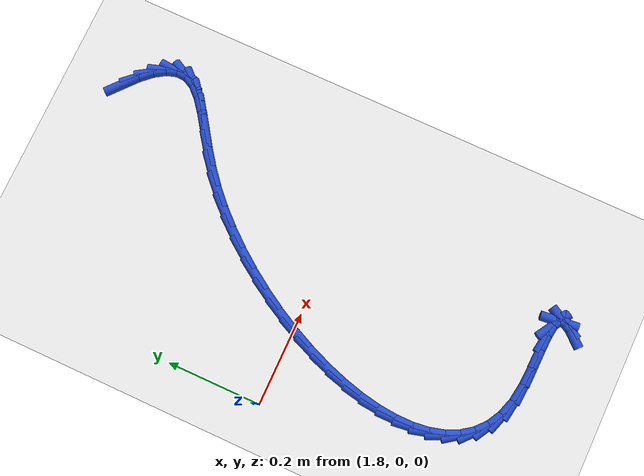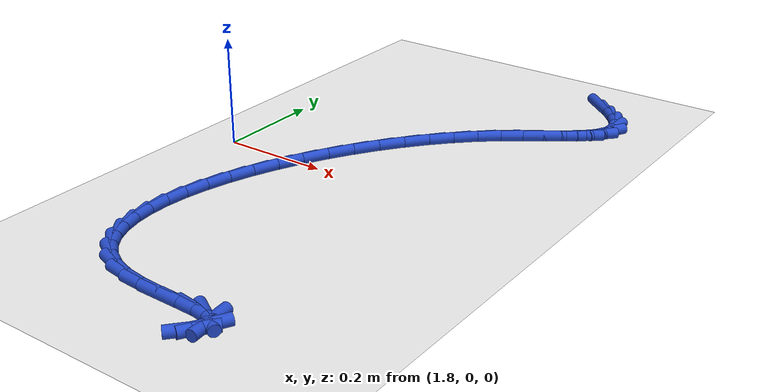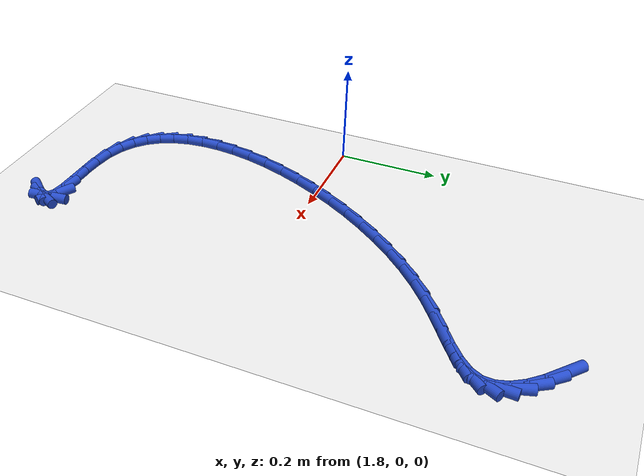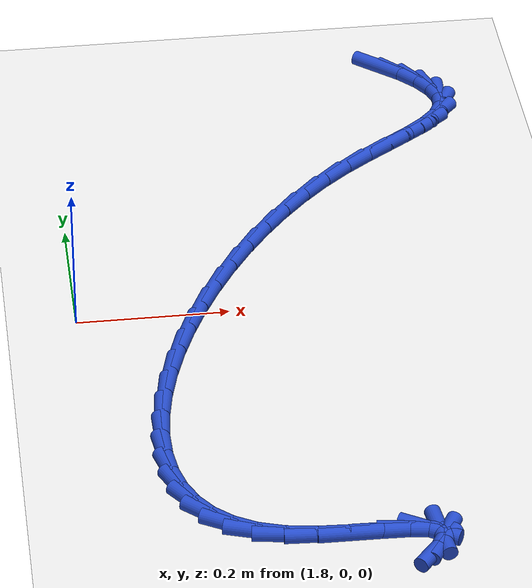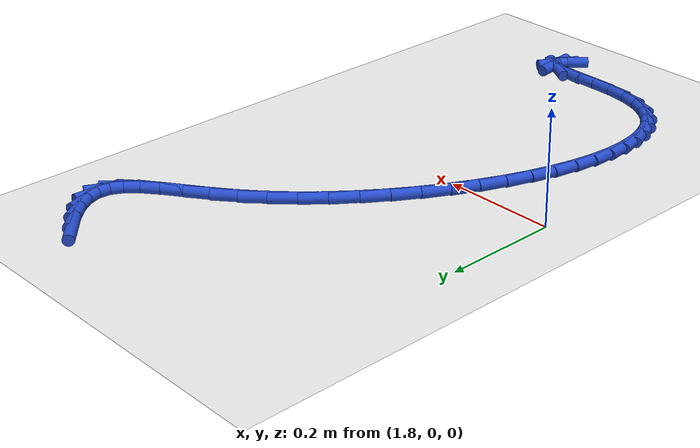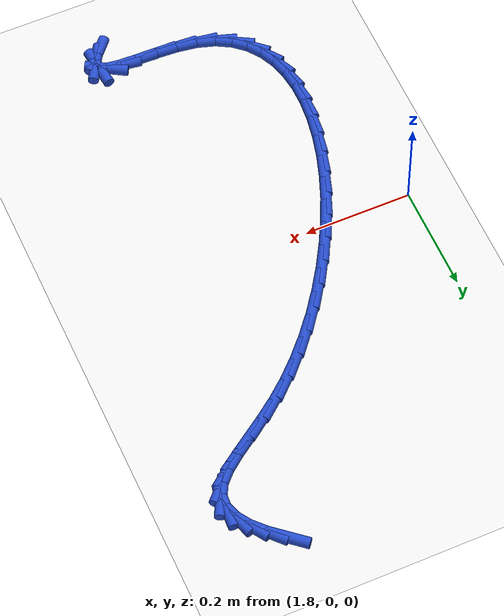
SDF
<sdf version="1.6">
 <world name="default">
  <model name="ground_plane">
   <static>1</static>
   <link name="link">
    <collision name="collision">
     <geometry><plane><normal>0 0 1</normal><size>100 100</size></plane></geometry>
     <surface><friction><ode><mu>100</mu><mu2>50</mu2></ode></friction></surface>
    </collision>
    <visual name="visual">
     <cast_shadows>0</cast_shadows>
     <geometry><plane><normal>0 0 1</normal><size>100 100</size></plane></geometry>
     <material>
      <script><uri>file://media/materials/scripts/gazebo.material</uri><name>Gazebo/WhiteGlow</name></script>
     </material>
    </visual>
   </link>
  </model>
  <model name="line">
   <link name="link_109">
    <pose>2.2791707379056088 0.5406483550702029 0.01 0 1.57 -0.7071521946297022</pose>
    <collision name="collision">
     <geometry><cylinder><radius>0.01</radius><length>0.08</length></cylinder></geometry>
    </collision>
    <visual name="visual">
     <material>
      <script><name>Gazebo/Blue</name><uri>file://media/materials/scripts/gazebo.material</uri></script>
     </material>
     <geometry><cylinder><radius>0.01</radius><length>0.08</length></cylinder></geometry>
    </visual>
   </link>
   <link name="link_110">
    <pose>2.3066873894392237 0.5171329271090309 0.01 0 1.57 -0.8260223634685088</pose>
    <collision name="collision">
     <geometry><cylinder><radius>0.01</radius><length>0.08</length></cylinder></geometry>
    </collision>
    <visual name="visual">
     <material>
      <script><name>Gazebo/Blue</name><uri>file://media/materials/scripts/gazebo.material</uri></script>
     </material>
     <geometry><cylinder><radius>0.01</radius><length>0.08</length></cylinder></geometry>
    </visual>
   </link>
   <link name="link_111">
    <pose>2.328373750245329 0.4936089202662467 0.01 0 1.57 -1.000448981818835</pose>
    <collision name="collision">
     <geometry><cylinder><radius>0.01</radius><length>0.08</length></cylinder></geometry>
    </collision>
    <visual name="visual">
     <material>
      <script><name>Gazebo/Blue</name><uri>file://media/materials/scripts/gazebo.material</uri></script>
     </material>
     <geometry><cylinder><radius>0.01</radius><length>0.08</length></cylinder></geometry>
    </visual>
   </link>
   <link name="link_112">
    <pose>2.343291833887722 0.47035242156020535 0.01 0 1.57 -1.2633438800542103</pose>
    <collision name="collision">
     <geometry><cylinder><radius>0.01</radius><length>0.08</length></cylinder></geometry>
    </collision>
    <visual name="visual">
     <material>
      <script><name>Gazebo/Blue</name><uri>file://media/materials/scripts/gazebo.material</uri></script>
     </material>
     <geometry><cylinder><radius>0.01</radius><length>0.08</length></cylinder></geometry>
    </visual>
   </link>
   <link name="link_113">
    <pose>2.3505036539301987 0.44763951800926133 0.01 0 1.57 1.5054614357379417</pose>
    <collision name="collision">
     <geometry><cylinder><radius>0.01</radius><length>0.08</length></cylinder></geometry>
    </collision>
    <visual name="visual">
     <material>
      <script><name>Gazebo/Blue</name><uri>file://media/materials/scripts/gazebo.material</uri></script>
     </material>
     <geometry><cylinder><radius>0.01</radius><length>0.08</length></cylinder></geometry>
    </visual>
   </link>
   <link name="link_114">
    <pose>2.3490712239365563 0.42574629663177005 0.01 0 1.57 1.0929296908083665</pose>
    <collision name="collision">
     <geometry><cylinder><radius>0.01</radius><length>0.08</length></cylinder></geometry>
    </collision>
    <visual name="visual">
     <material>
      <script><name>Gazebo/Blue</name><uri>file://media/materials/scripts/gazebo.material</uri></script>
     </material>
     <geometry><cylinder><radius>0.01</radius><length>0.08</length></cylinder></geometry>
    </visual>
   </link>
   <link name="link_115">
    <pose>2.338259573347354 0.40487044555839247 0.01 0 1.57 0.8124771727961446</pose>
    <collision name="collision">
     <geometry><cylinder><radius>0.01</radius><length>0.08</length></cylinder></geometry>
    </collision>
    <visual name="visual">
     <material>
      <script><name>Gazebo/Blue</name><uri>file://media/materials/scripts/gazebo.material</uri></script>
     </material>
     <geometry><cylinder><radius>0.01</radius><length>0.08</length></cylinder></geometry>
    </visual>
   </link>
   <link name="link_116">
    <pose>2.3190191952962818 0.38455877535841093 0.01 0 1.57 0.670381623799917</pose>
    <collision name="collision">
     <geometry><cylinder><radius>0.01</radius><length>0.08</length></cylinder></geometry>
    </collision>
    <visual name="visual">
     <material>
      <script><name>Gazebo/Blue</name><uri>file://media/materials/scripts/gazebo.material</uri></script>
     </material>
     <geometry><cylinder><radius>0.01</radius><length>0.08</length></cylinder></geometry>
    </visual>
   </link>
   <link name="link_117">
    <pose>2.2931350323674717 0.36403585624338686 0.01 0 1.57 0.6106379080606386</pose>
    <collision name="collision">
     <geometry><cylinder><radius>0.01</radius><length>0.08</length></cylinder></geometry>
    </collision>
    <visual name="visual">
     <material>
      <script><name>Gazebo/Blue</name><uri>file://media/materials/scripts/gazebo.material</uri></script>
     </material>
     <geometry><cylinder><radius>0.01</radius><length>0.08</length></cylinder></geometry>
    </visual>
   </link>
   <link name="link_118">
    <pose>2.2623979868542614 0.34252395695673926 0.01 0 1.57 0.6031262595604006</pose>
    <collision name="collision">
     <geometry><cylinder><radius>0.01</radius><length>0.08</length></cylinder></geometry>
    </collision>
    <visual name="visual">
     <material>
      <script><name>Gazebo/Blue</name><uri>file://media/materials/scripts/gazebo.material</uri></script>
     </material>
     <geometry><cylinder><radius>0.01</radius><length>0.08</length></cylinder></geometry>
    </visual>
   </link>
   <link name="link_119">
    <pose>2.2285989610499897 0.31924534624188744 0.01 0 1.57 0.6346926039071227</pose>
    <collision name="collision">
     <geometry><cylinder><radius>0.01</radius><length>0.08</length></cylinder></geometry>
    </collision>
    <visual name="visual">
     <material>
      <script><name>Gazebo/Blue</name><uri>file://media/materials/scripts/gazebo.material</uri></script>
     </material>
     <geometry><cylinder><radius>0.01</radius><length>0.08</length></cylinder></geometry>
    </visual>
   </link>
   <link name="link_120">
    <pose>2.193528857247996 0.29342229284225113 0.01 0 1.57 0.6976509144621438</pose>
    <collision name="collision">
     <geometry><cylinder><radius>0.01</radius><length>0.08</length></cylinder></geometry>
    </collision>
    <visual name="visual">
     <material>
      <script><name>Gazebo/Blue</name><uri>file://media/materials/scripts/gazebo.material</uri></script>
     </material>
     <geometry><cylinder><radius>0.01</radius><length>0.08</length></cylinder></geometry>
    </visual>
   </link>
   <link name="link_121">
    <pose>2.158863797555404 0.26436324375217307 0.01 0 1.57 0.7656723222307833</pose>
    <collision name="collision">
     <geometry><cylinder><radius>0.01</radius><length>0.08</length></cylinder></geometry>
    </collision>
    <visual name="visual">
     <material>
      <script><name>Gazebo/Blue</name><uri>file://media/materials/scripts/gazebo.material</uri></script>
     </material>
     <geometry><cylinder><radius>0.01</radius><length>0.08</length></cylinder></geometry>
    </visual>
   </link>
   <link name="link_122">
    <pose>2.1253083078036052 0.23210613134504904 0.01 0 1.57 0.827286434055667</pose>
    <collision name="collision">
     <geometry><cylinder><radius>0.01</radius><length>0.08</length></cylinder></geometry>
    </collision>
    <visual name="visual">
     <material>
      <script><name>Gazebo/Blue</name><uri>file://media/materials/scripts/gazebo.material</uri></script>
     </material>
     <geometry><cylinder><radius>0.01</radius><length>0.08</length></cylinder></geometry>
    </visual>
   </link>
   <link name="link_123">
    <pose>2.093078033174193 0.19705594506832125 0.01 0 1.57 0.8840420822901037</pose>
    <collision name="collision">
     <geometry><cylinder><radius>0.01</radius><length>0.08</length></cylinder></geometry>
    </collision>
    <visual name="visual">
     <material>
      <script><name>Gazebo/Blue</name><uri>file://media/materials/scripts/gazebo.material</uri></script>
     </material>
     <geometry><cylinder><radius>0.01</radius><length>0.08</length></cylinder></geometry>
    </visual>
   </link>
   <link name="link_124">
    <pose>2.062384906300619 0.15962046179221145 0.01 0 1.57 0.9373684311179421</pose>
    <collision name="collision">
     <geometry><cylinder><radius>0.01</radius><length>0.08</length></cylinder></geometry>
    </collision>
    <visual name="visual">
     <material>
      <script><name>Gazebo/Blue</name><uri>file://media/materials/scripts/gazebo.material</uri></script>
     </material>
     <geometry><cylinder><radius>0.01</radius><length>0.08</length></cylinder></geometry>
    </visual>
   </link>
   <link name="link_125">
    <pose>2.0334408598163316 0.12020745838694152 0.01 0 1.57 0.9885387745053886</pose>
    <collision name="collision">
     <geometry><cylinder><radius>0.01</radius><length>0.08</length></cylinder></geometry>
    </collision>
    <visual name="visual">
     <material>
      <script><name>Gazebo/Blue</name><uri>file://media/materials/scripts/gazebo.material</uri></script>
     </material>
     <geometry><cylinder><radius>0.01</radius><length>0.08</length></cylinder></geometry>
    </visual>
   </link>
   <link name="link_126">
    <pose>2.0064578263547808 0.07922471172273331 0.01 0 1.57 1.0387359799749938</pose>
    <collision name="collision">
     <geometry><cylinder><radius>0.01</radius><length>0.08</length></cylinder></geometry>
    </collision>
    <visual name="visual">
     <material>
      <script><name>Gazebo/Blue</name><uri>file://media/materials/scripts/gazebo.material</uri></script>
     </material>
     <geometry><cylinder><radius>0.01</radius><length>0.08</length></cylinder></geometry>
    </visual>
   </link>
   <link name="link_127">
    <pose>1.9816477385494167 0.037079998669808614 0.01 0 1.57 1.0891183109979177</pose>
    <collision name="collision">
     <geometry><cylinder><radius>0.01</radius><length>0.08</length></cylinder></geometry>
    </collision>
    <visual name="visual">
     <material>
      <script><name>Gazebo/Blue</name><uri>file://media/materials/scripts/gazebo.material</uri></script>
     </material>
     <geometry><cylinder><radius>0.01</radius><length>0.08</length></cylinder></geometry>
    </visual>
   </link>
   <link name="link_128">
    <pose>1.9592225290336884 -0.0058189039016107585 0.01 0 1.57 1.1408882683886215</pose>
    <collision name="collision">
     <geometry><cylinder><radius>0.01</radius><length>0.08</length></cylinder></geometry>
    </collision>
    <visual name="visual">
     <material>
      <script><name>Gazebo/Blue</name><uri>file://media/materials/scripts/gazebo.material</uri></script>
     </material>
     <geometry><cylinder><radius>0.01</radius><length>0.08</length></cylinder></geometry>
    </visual>
   </link>
   <link name="link_129">
    <pose>1.9393941304410454 -0.04906421912130303 0.01 0 1.57 1.1953692449509468</pose>
    <collision name="collision">
     <geometry><cylinder><radius>0.01</radius><length>0.08</length></cylinder></geometry>
    </collision>
    <visual name="visual">
     <material>
      <script><name>Gazebo/Blue</name><uri>file://media/materials/scripts/gazebo.material</uri></script>
     </material>
     <geometry><cylinder><radius>0.01</radius><length>0.08</length></cylinder></geometry>
    </visual>
   </link>
   <link name="link_130">
    <pose>1.9223744754049379 -0.0922481701190464 0.01 0 1.57 1.2540960752663137</pose>
    <collision name="collision">
     <geometry><cylinder><radius>0.01</radius><length>0.08</length></cylinder></geometry>
    </collision>
    <visual name="visual">
     <material>
      <script><name>Gazebo/Blue</name><uri>file://media/materials/scripts/gazebo.material</uri></script>
     </material>
     <geometry><cylinder><radius>0.01</radius><length>0.08</length></cylinder></geometry>
    </visual>
   </link>
   <link name="link_131">
    <pose>1.9083754965588153 -0.13496298002461893 0.01 0 1.57 1.3189257766033793</pose>
    <collision name="collision">
     <geometry><cylinder><radius>0.01</radius><length>0.08</length></cylinder></geometry>
    </collision>
    <visual name="visual">
     <material>
      <script><name>Gazebo/Blue</name><uri>file://media/materials/scripts/gazebo.material</uri></script>
     </material>
     <geometry><cylinder><radius>0.01</radius><length>0.08</length></cylinder></geometry>
    </visual>
   </link>
   <link name="link_132">
    <pose>1.8976091265361268 -0.17680087196779884 0.01 0 1.57 1.392171922472418</pose>
    <collision name="collision">
     <geometry><cylinder><radius>0.01</radius><length>0.08</length></cylinder></geometry>
    </collision>
    <visual name="visual">
     <material>
      <script><name>Gazebo/Blue</name><uri>file://media/materials/scripts/gazebo.material</uri></script>
     </material>
     <geometry><cylinder><radius>0.01</radius><length>0.08</length></cylinder></geometry>
    </visual>
   </link>
   <link name="link_133">
    <pose>1.890287297970323 -0.2173540690783644 0.01 0 1.57 1.4767542648757659</pose>
    <collision name="collision">
     <geometry><cylinder><radius>0.01</radius><length>0.08</length></cylinder></geometry>
    </collision>
    <visual name="visual">
     <material>
      <script><name>Gazebo/Blue</name><uri>file://media/materials/scripts/gazebo.material</uri></script>
     </material>
     <geometry><cylinder><radius>0.01</radius><length>0.08</length></cylinder></geometry>
    </visual>
   </link>
   <link name="link_134">
    <pose>1.8866219434948523 -0.2562147944860937 0.01 0 1.57 -1.5652727264300403</pose>
    <collision name="collision">
     <geometry><cylinder><radius>0.01</radius><length>0.08</length></cylinder></geometry>
    </collision>
    <visual name="visual">
     <material>
      <script><name>Gazebo/Blue</name><uri>file://media/materials/scripts/gazebo.material</uri></script>
     </material>
     <geometry><cylinder><radius>0.01</radius><length>0.08</length></cylinder></geometry>
    </visual>
   </link>
   <link name="link_135">
    <pose>1.886824995743165 -0.29297527132076495 0.01 0 1.57 -1.4463885787642685</pose>
    <collision name="collision">
     <geometry><cylinder><radius>0.01</radius><length>0.08</length></cylinder></geometry>
    </collision>
    <visual name="visual">
     <material>
      <script><name>Gazebo/Blue</name><uri>file://media/materials/scripts/gazebo.material</uri></script>
     </material>
     <geometry><cylinder><radius>0.01</radius><length>0.08</length></cylinder></geometry>
    </visual>
   </link>
   <link name="link_136">
    <pose>1.8911083873487113 -0.32722772271215644 0.01 0 1.57 -1.3036740669974585</pose>
    <collision name="collision">
     <geometry><cylinder><radius>0.01</radius><length>0.08</length></cylinder></geometry>
    </collision>
    <visual name="visual">
     <material>
      <script><name>Gazebo/Blue</name><uri>file://media/materials/scripts/gazebo.material</uri></script>
     </material>
     <geometry><cylinder><radius>0.01</radius><length>0.08</length></cylinder></geometry>
    </visual>
   </link>
   <link name="link_137">
    <pose>1.89968405094494 -0.3585643717900462 0.01 0 1.57 -1.1339609931120458</pose>
    <collision name="collision">
     <geometry><cylinder><radius>0.01</radius><length>0.08</length></cylinder></geometry>
    </collision>
    <visual name="visual">
     <material>
      <script><name>Gazebo/Blue</name><uri>file://media/materials/scripts/gazebo.material</uri></script>
     </material>
     <geometry><cylinder><radius>0.01</radius><length>0.08</length></cylinder></geometry>
    </visual>
   </link>
   <link name="link_138">
    <pose>1.9127639191653008 -0.38657744168421243 0.01 0 1.57 -0.9383310190040286</pose>
    <collision name="collision">
     <geometry><cylinder><radius>0.01</radius><length>0.08</length></cylinder></geometry>
    </collision>
    <visual name="visual">
     <material>
      <script><name>Gazebo/Blue</name><uri>file://media/materials/scripts/gazebo.material</uri></script>
     </material>
     <geometry><cylinder><radius>0.01</radius><length>0.08</length></cylinder></geometry>
    </visual>
   </link>
   <link name="link_139">
    <pose>1.9305599246432439 -0.41085915552443336 0.01 0 1.57 -0.7252493031515379</pose>
    <collision name="collision">
     <geometry><cylinder><radius>0.01</radius><length>0.08</length></cylinder></geometry>
    </collision>
    <visual name="visual">
     <material>
      <script><name>Gazebo/Blue</name><uri>file://media/materials/scripts/gazebo.material</uri></script>
     </material>
     <geometry><cylinder><radius>0.01</radius><length>0.08</length></cylinder></geometry>
    </visual>
   </link>
   <link name="link_140">
    <pose>1.9532840000122178 -0.43100173644048717 0.01 0 1.57 -0.5102639223256162</pose>
    <collision name="collision">
     <geometry><cylinder><radius>0.01</radius><length>0.08</length></cylinder></geometry>
    </collision>
    <visual name="visual">
     <material>
      <script><name>Gazebo/Blue</name><uri>file://media/materials/scripts/gazebo.material</uri></script>
     </material>
     <geometry><cylinder><radius>0.01</radius><length>0.08</length></cylinder></geometry>
    </visual>
   </link>
   <link name="link_141">
    <pose>1.9811480779056736 -0.44659740756215205 0.01 0 1.57 -0.3100268089567567</pose>
    <collision name="collision">
     <geometry><cylinder><radius>0.01</radius><length>0.08</length></cylinder></geometry>
    </collision>
    <visual name="visual">
     <material>
      <script><name>Gazebo/Blue</name><uri>file://media/materials/scripts/gazebo.material</uri></script>
     </material>
     <geometry><cylinder><radius>0.01</radius><length>0.08</length></cylinder></geometry>
    </visual>
   </link>
   <link name="link_142">
    <pose>2.0143640909570593 -0.457238392019206 0.01 0 1.57 -0.14687577225755266</pose>
    <collision name="collision">
     <geometry><cylinder><radius>0.01</radius><length>0.08</length></cylinder></geometry>
    </collision>
    <visual name="visual">
     <material>
      <script><name>Gazebo/Blue</name><uri>file://media/materials/scripts/gazebo.material</uri></script>
     </material>
     <geometry><cylinder><radius>0.01</radius><length>0.08</length></cylinder></geometry>
    </visual>
   </link>
   <link name="link_143">
    <pose>2.052534286542155 -0.4628853336939595 0.01 0 1.57 -0.054264574590937004</pose>
    <collision name="collision">
     <geometry><cylinder><radius>0.01</radius><length>0.08</length></cylinder></geometry>
    </collision>
    <visual name="visual">
     <material>
      <script><name>Gazebo/Blue</name><uri>file://media/materials/scripts/gazebo.material</uri></script>
     </material>
     <geometry><cylinder><radius>0.01</radius><length>0.08</length></cylinder></geometry>
    </visual>
   </link>
   <link name="link_144">
    <pose>2.092668621342867 -0.46506534650584486 0.01 0 1.57 -0.017084786068751846</pose>
    <collision name="collision">
     <geometry><cylinder><radius>0.01</radius><length>0.08</length></cylinder></geometry>
    </collision>
    <visual name="visual">
     <material>
      <script><name>Gazebo/Blue</name><uri>file://media/materials/scripts/gazebo.material</uri></script>
     </material>
     <geometry><cylinder><radius>0.01</radius><length>0.08</length></cylinder></geometry>
    </visual>
   </link>
   <link name="link_145">
    <pose>2.131088205454865 -0.4657218007532832 0.01 0 1.57 -0.03257707678969846</pose>
    <collision name="collision">
     <geometry><cylinder><radius>0.01</radius><length>0.08</length></cylinder></geometry>
    </collision>
    <visual name="visual">
     <material>
      <script><name>Gazebo/Blue</name><uri>file://media/materials/scripts/gazebo.material</uri></script>
     </material>
     <geometry><cylinder><radius>0.01</radius><length>0.08</length></cylinder></geometry>
    </visual>
   </link>
   <link name="link_146">
    <pose>2.16411414351016 -0.46679807003627716 0.01 0 1.57 -0.14260886774540443</pose>
    <collision name="collision">
     <geometry><cylinder><radius>0.01</radius><length>0.08</length></cylinder></geometry>
    </collision>
    <visual name="visual">
     <material>
      <script><name>Gazebo/Blue</name><uri>file://media/materials/scripts/gazebo.material</uri></script>
     </material>
     <geometry><cylinder><radius>0.01</radius><length>0.08</length></cylinder></geometry>
    </visual>
   </link>
   <link name="link_147">
    <pose>2.1880677939336217 -0.4702374203621139 0.01 0 1.57 -0.5383814974938035</pose>
    <collision name="collision">
     <geometry><cylinder><radius>0.01</radius><length>0.08</length></cylinder></geometry>
    </collision>
    <visual name="visual">
     <material>
      <script><name>Gazebo/Blue</name><uri>file://media/materials/scripts/gazebo.material</uri></script>
     </material>
     <geometry><cylinder><radius>0.01</radius><length>0.08</length></cylinder></geometry>
    </visual>
   </link>
   <link name="link_148">
    <pose>2.200303718582696 -0.477545102410467 0.01 0 1.57 -1.459377028038867</pose>
    <collision name="collision">
     <geometry><cylinder><radius>0.01</radius><length>0.08</length></cylinder></geometry>
    </collision>
    <visual name="visual">
     <material>
      <script><name>Gazebo/Blue</name><uri>file://media/materials/scripts/gazebo.material</uri></script>
     </material>
     <geometry><cylinder><radius>0.01</radius><length>0.08</length></cylinder></geometry>
    </visual>
   </link>
   <link name="link_149">
    <pose>2.20156195427927 -0.4887911316702182 0.01 0 1.57 1.0649512445162392</pose>
    <collision name="collision">
     <geometry><cylinder><radius>0.01</radius><length>0.08</length></cylinder></geometry>
    </collision>
    <visual name="visual">
     <material>
      <script><name>Gazebo/Blue</name><uri>file://media/materials/scripts/gazebo.material</uri></script>
     </material>
     <geometry><cylinder><radius>0.01</radius><length>0.08</length></cylinder></geometry>
    </visual>
   </link>
   <link name="link_150">
    <pose>2.1932748756558356 -0.5037520145657518 0.01 0 1.57 0.8442137931138247</pose>
    <collision name="collision">
     <geometry><cylinder><radius>0.01</radius><length>0.08</length></cylinder></geometry>
    </collision>
    <visual name="visual">
     <material>
      <script><name>Gazebo/Blue</name><uri>file://media/materials/scripts/gazebo.material</uri></script>
     </material>
     <geometry><cylinder><radius>0.01</radius><length>0.08</length></cylinder></geometry>
    </visual>
   </link>
  </model>
 </world>
</sdf>
